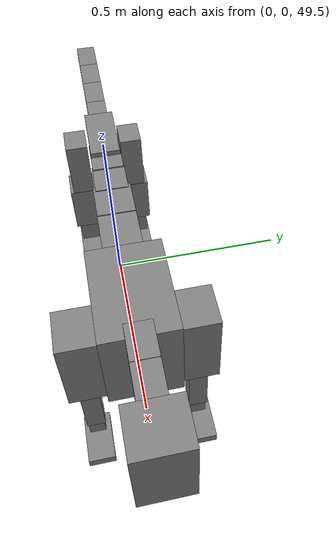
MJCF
<mujoco model="dog">

    <default>
        <joint armature="0.02" stiffness="1" damping="0.2" limited="true"/>
        <geom condim="3" friction="1 0.05 0.05" margin="0.01"/>
        <motor ctrllimited="true" ctrlrange="-1.0 1.0" forcelimited="true" gear="50"/>
    </default>

    <compiler inertiafromgeom="true" angle="radian"/>

    <option timestep="0.016" iterations="50" tolerance="1e-10" solver="Newton" jacobian="dense" cone="pyramidal"/>

    <size nconmax="20000" njmax="60000" nstack="5000000"/>
    <visual>
        <map force="0.1" zfar="30"/>
        <rgba haze="0.15 0.25 0.35 1"/>
        <quality shadowsize="2048"/>
        <global offwidth="800" offheight="800"/>
    </visual>

    <asset>
        <texture type="skybox" builtin="gradient" rgb1="0.3 0.5 0.7" rgb2="0 0 0" width="512" height="512"/>
        <texture name="texplane" type="2d" builtin="checker" rgb1=".2 .3 .4" rgb2=".1 0.15 0.2" width="512" height="512"
                 mark="cross" markrgb=".8 .8 .8"/>
        <texture name="texgeom" type="cube" builtin="flat" mark="cross" width="127" height="1278" rgb1="0.8 0.6 0.4"
                 rgb2="0.8 0.6 0.4" markrgb="1 1 1" random="0.01"/>

        <material name="matplane" reflectance="0.3" texture="texplane" texrepeat="1 1" texuniform="true"/>
        <material name="matgeom" texture="texgeom" texuniform="true" rgba="0.8 0.6 .4 1"/>
    </asset>

    <worldbody>
        <geom name="floor" pos="0 0 0" size="0 0 .25" type="plane" material="matplane" condim="3"/>

        <light directional="false" diffuse=".2 .2 .2" specular="0 0 0" pos="0 0 5" dir="0 0 -1" castshadow="false"/>
        <light mode="targetbodycom" target="torso" directional="false" diffuse=".8 .8 .8" specular="0.3 0.3 0.3"
               pos="0 0 4.0" dir="0 0 -1"/>

        <body name="root" pos="0 0 50">
            <freejoint name="root_1"/>
            <geom type="box" pos="0 0 -0.02" size="0.0774  0.0358  0.063" density="2030"/>

            <body name="spine1" pos="0.054 0 0">
                <joint name="spine1_y" axis="0 1 0" range="0 0.7" limited="true"/>
                <geom type="box" pos="0.02375 0 -0.03" size="0.04375  0.0375  0.05985" density="2030"/>

                <body name="spine2" pos="0.0612 0 0">
                    <joint name="spine2_y" axis="0 1 0" range="-0.15 0.15" limited="true"/>
                    <geom type="box" pos="0.03555  0  -0.04" size="0.04055  0.039  0.06615" density="2030"/>

                    <body name="spine3" pos="0.0730 0 0">
                        <joint name="spine3_y" axis="0 1 0" range="-0.15 0.15" limited="true"/>
                        <geom type="box" pos="0.03555  0  -0.057" size="0.04555  0.0445  0.081" density="2030"/>

                        <body name="spine4" pos="0.0780 0 0">
                            <joint name="spine4_y" axis="0 1 0" range="-0.15 0.15" limited="true"/>
                            <geom type="box" pos="0.05265  0  -0.07" size="0.05265  0.045  0.09135" density="2030"/>

                            <body name="torso" pos="0.1082 0 0">
                                <joint name="torso_y" axis="0 1 0" range="-0.15 0.15" limited="true"/>
                                <geom type="box" pos="0.11925  0  -0.085" size="0.11925  0.085  0.11745"
                                      density="2030"/>

                                <body name="neck1" pos="0.2160  0   0.0180">
                                    <joint name="neck1_y" axis="0 1 0" range="-1.2  -1" limited="true"/>
                                    <geom type="box" pos="0.0423  0  0" size="0.0423  0.03  0.036" density="2325"/>

                                    <body name="neck2" pos="0.0853  0  0">
                                        <joint name="neck2_y" axis="0 1 0" range="0.1  0" limited="true"/>
                                        <geom type="box" pos="0.0423  0  0" size="0.0423  0.03  0.036" density="2325"/>

                                        <body name="head" pos="0.0853  0  0">
                                            <joint name="head_y" axis="0 1 0" range="-0.3  -0.2" limited="true"/>
                                            <geom type="box" pos="0.0531  0  -0.055" size="0.0531  0.06  0.1044"
                                                  density="4030"/>

                                        </body>
                                    </body>
                                </body>

                                <body name="front_shoulder" pos="0.156  0   -0.0480">
                                    <joint name="front_shoulder_y" axis="0 1 0" range="-1 1.5" limited="true"/>
                                    <geom type="box" pos="0 0.13 -0.0802" size="0.0507  0.0433  0.1069" density="1158"/>
                                    <geom type="box" pos="0 -0.13 -0.0802" size="0.0507  0.0433  0.1069"
                                          density="1158"/>

                                    <body name="front_elbow" pos="0  0  -0.1604">
                                        <joint name="front_elbow_y" axis="0 1 0" range="-2 0" limited="true"/>
                                        <geom type="box" pos="0 0.13 -0.1073" size="0.0225  0.0230  0.1073"
                                              density="1081"/>
                                        <geom type="box" pos="0 -0.13 -0.1073" size="0.0225  0.0230  0.1073"
                                              density="1081"/>

                                        <body name="front_wrist" pos="0  0  -0.2145">
                                            <joint name="front_wrist_y" axis="0 1 0" range="-0.2 0" limited="true"/>
                                            <geom type="box" pos="0 0.13 -0.0317" size="0.0180  0.0200  0.0449"
                                                  density="1664"/>
                                            <geom type="box" pos="0 -0.13 -0.0317" size="0.0180  0.0200  0.0449"
                                                  density="1664"/>

                                            <body name="front_finger_end" pos="0  0  -0.0634">
                                                <joint name="front_finger_y" axis="0 1 0" range="-0.4 1"
                                                       limited="true"/>
                                                <geom type="box" pos="0.0331  0.13  0.0021"
                                                      size="0.0607  0.0331  0.0129" density="1515"/>
                                                <geom type="box" pos="0.0331  -0.13  0.0021"
                                                      size="0.0607  0.0331  0.0129" density="1515"/>

                                            </body>

                                        </body>
                                    </body>
                                </body>

                            </body>
                        </body>
                    </body>
                </body>
            </body>

            <body name="back_hip" pos="-0.03 0 -0.018">
                <joint name="back_hip_y" axis="0 1 0" range="-1.5 0.3" limited="true"/>
                <geom type="box" pos="0 0.07 -0.0735" size="0.0347  0.0272  0.0963" density="1154"/>
                <geom type="box" pos="0 -0.07 -0.0735" size="0.0347  0.0272  0.0963" density="1154"/>

                <body name="back_knee" pos="0  0  -0.1469">
                    <joint name="back_knee_y" axis="0 1 0" range="0 2.8" limited="true"/>
                    <geom type="box" pos="0 0.07 -0.0514" size="0.0362  0.0357  0.0670" density="1227"/>
                    <geom type="box" pos="0 -0.07 -0.0514" size="0.0362  0.0357  0.0670" density="1227"/>

                    <body name="back_ankle" pos="0  0  -0.1028">
                        <joint name="back_ankle_y" axis="0 1 0" range="-2.2 0" limited="true"/>
                        <geom type="box" pos="0 0.07 -0.0488" size="0.0258  0.0258  0.0601" density="1284"/>
                        <geom type="box" pos="0 -0.07 -0.0488" size="0.0258  0.0258  0.0601" density="1284"/>

                        <body name="back_toe_end" pos="0  0  -0.0977">
                            <joint name="back_toe_y" axis="0 1 0" range="-0.4 1" limited="true"/>
                            <geom type="box" pos="0.0304  0.07  0.0006" size="0.0557  0.0304  0.0144" density="1515"/>
                            <geom type="box" pos="0.0304  -0.07  0.0006" size="0.0557  0.0304  0.0144" density="1515"/>

                        </body>
                    </body>
                </body>
            </body>

            <body name="tail1" pos="-0.074 0 -0.006">
                <joint name="tail1_y" axis="0 1 0" range="-0.2 0.2" limited="true"/>
                <geom type="box" pos="-0.0536  0  0" size="0.045  0.025  0.0175" density="1587"/>

                <body name="tail2" pos="-0.09 0 0">
                    <joint name="tail2_y" axis="0 1 0" range="-0.2 0.2" limited="true"/>
                    <geom type="box" pos="-0.0536  0  0" size="0.045  0.025  0.0175" density="1587"/>

                    <body name="tail3" pos="-0.09 0 0">
                        <joint name="tail3_y" axis="0 1 0" range="-0.2 0.2" limited="true"/>
                        <geom type="box" pos="-0.0536  0  0" size="0.045  0.025  0.0175" density="1587"/>

                        <body name="tail4" pos="-0.09 0 0">
                            <joint name="tail4_y" axis="0 1 0" range="-0.2 0.2" limited="true"/>
                            <geom type="box" pos="-0.0536  0  0" size="0.045  0.025  0.0175" density="1587"/>

                        </body>
                    </body>
                </body>
            </body>
        </body>
    </worldbody>

    <actuator>
        <motor joint="spine1_y" forcerange="-150 150     "/>
        <motor joint="spine2_y" forcerange="-150 150     "/>
        <motor joint="spine3_y" forcerange="-150 150     "/>
        <motor joint="spine4_y" forcerange="-150 150     "/>
        <motor joint="torso_y" forcerange="-150 150     "/>
        <motor joint="neck1_y" forcerange="-100 100       "/>
        <motor joint="neck2_y" forcerange="-100 100       "/>
        <motor joint="head_y" forcerange="-150 150       "/>
        <motor joint="front_shoulder_y" forcerange="-198.63 190.08"/>
        <motor joint="front_elbow_y" forcerange="-141.33 125.73"/>
        <motor joint="front_wrist_y" forcerange="-53.62 106.29"/>
        <motor joint="front_finger_y" forcerange="-51.23 85.44"/>
        <motor joint="back_hip_y" forcerange="-207.24 355.33"/>
        <motor joint="back_knee_y" forcerange="-393.20 326.00"/>
        <motor joint="back_angle_y" forcerange="-131.53 182.05"/>
        <motor joint="back_toe_y" forcerange="-52.18 110.97"/>
        <motor joint="tail1_y" forcerange="-50 50     "/>
        <motor joint="tail2_y" forcerange="-50 50     "/>
        <motor joint="tail3_y" forcerange="-50 50     "/>
        <motor joint="tail4_y" forcerange="-50 50     "/>
    </actuator>
</mujoco>
